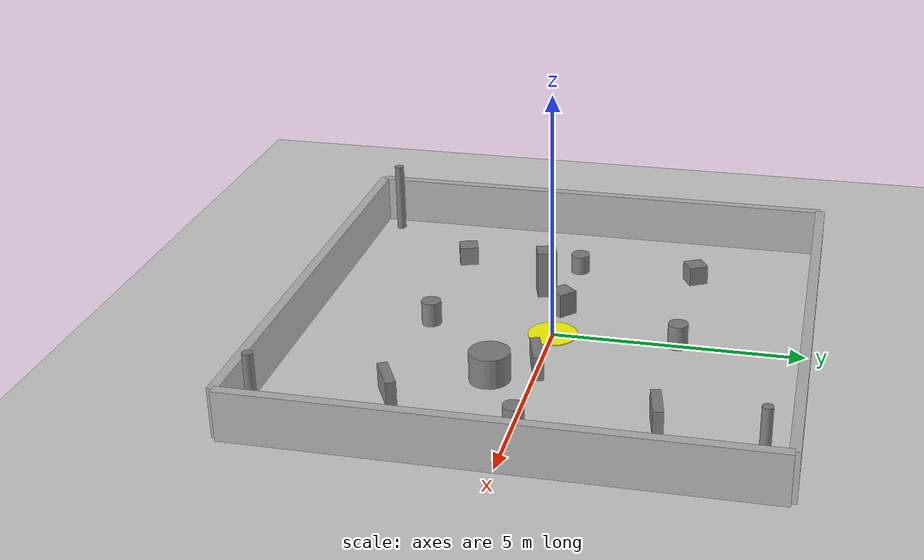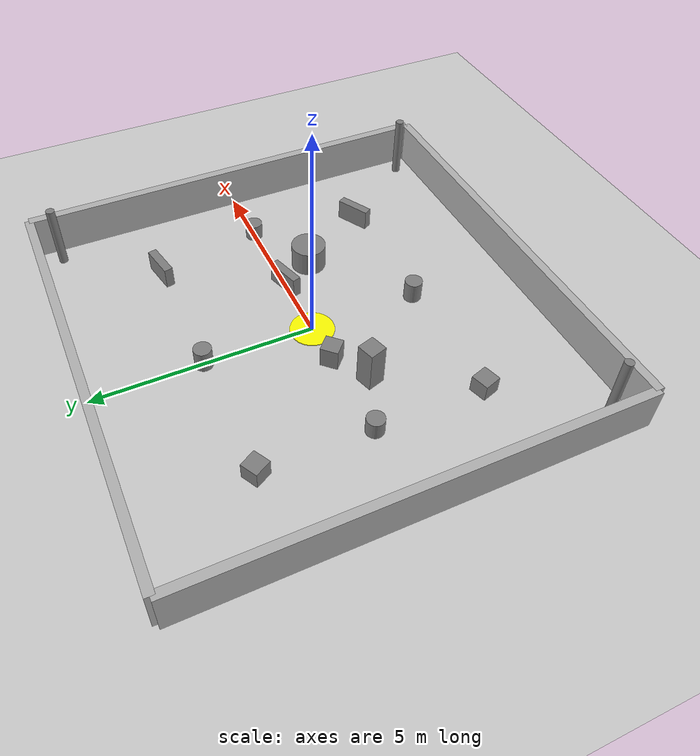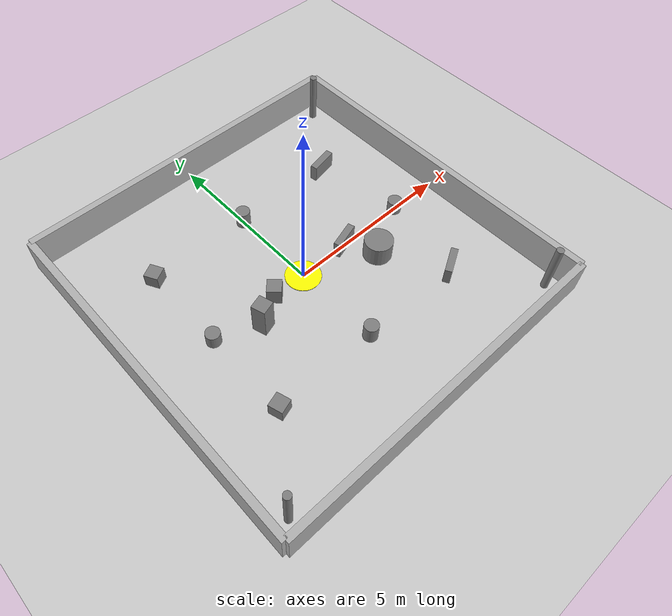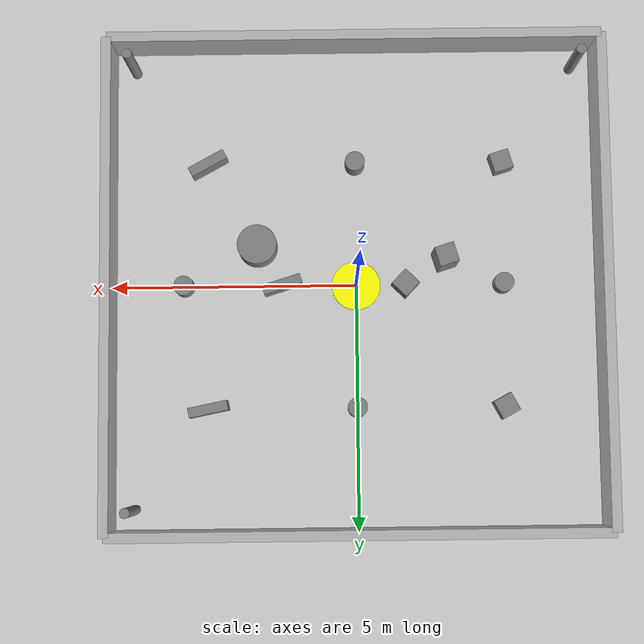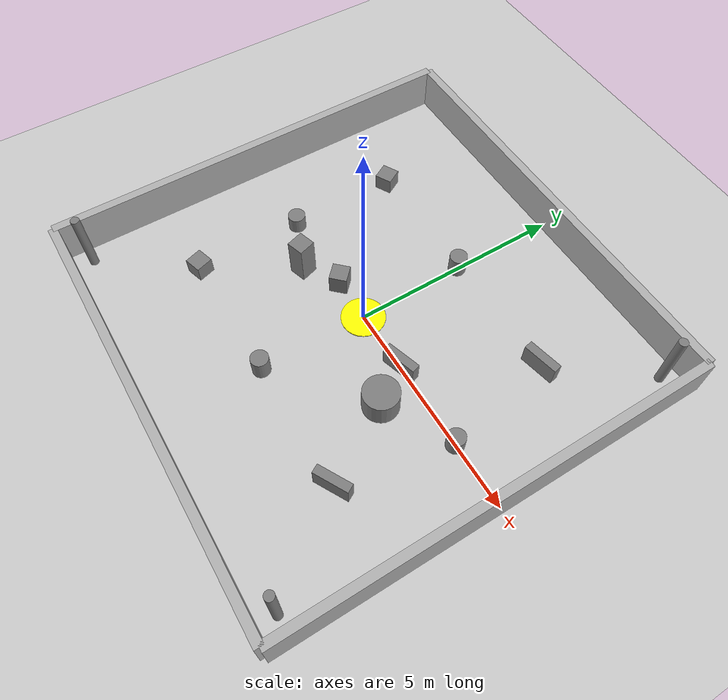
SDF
<?xml version="1.0" ?>
<sdf version="1.8">
  <world name="locobot_world">

    <physics name="1ms" type="dart">
      <max_step_size>0.001</max_step_size>
      <real_time_factor>1.0</real_time_factor>
    </physics>

    <plugin filename="gz-sim-physics-system" name="gz::sim::systems::Physics"/>
    <plugin filename="gz-sim-user-commands-system" name="gz::sim::systems::UserCommands"/>
    <plugin filename="gz-sim-scene-broadcaster-system" name="gz::sim::systems::SceneBroadcaster"/>
    <plugin filename="gz-sim-contact-system" name="gz::sim::systems::Contact"/>
    <plugin filename="gz-sim-sensors-system" name="gz::sim::systems::Sensors">
      <render_engine>ogre</render_engine>
    </plugin>

    <light name="sun" type="directional">
      <cast_shadows>true</cast_shadows>
      <pose>0 0 10 0 0 0</pose>
      <diffuse>0.8 0.8 0.8 1</diffuse>
      <specular>0.2 0.2 0.2 1</specular>
      <direction>-0.5 0.1 -0.9</direction>
    </light>

    <model name="ground_plane">
      <static>true</static>
      <link name="link">
        <collision name="collision">
          <geometry><plane><normal>0 0 1</normal><size>20 20</size></plane></geometry>
        </collision>
        <visual name="visual">
          <geometry><plane><normal>0 0 1</normal><size>20 20</size></plane></geometry>
          <material><ambient>0.8 0.8 0.8 1</ambient><diffuse>0.8 0.8 0.8 1</diffuse></material>
        </visual>
      </link>
    </model>

    <model name="wall_north">
      <static>true</static>
      <pose>0 5 0.5 0 0 0</pose>
      <link name="link">
        <collision name="collision"><geometry><box><size>10 0.2 1</size></box></geometry></collision>
        <visual name="visual">
          <geometry><box><size>10 0.2 1</size></box></geometry>
          <material><ambient>0.7 0.7 0.7 1</ambient><diffuse>0.7 0.7 0.7 1</diffuse></material>
        </visual>
      </link>
    </model>

    <model name="wall_south">
      <static>true</static>
      <pose>0 -5 0.5 0 0 0</pose>
      <link name="link">
        <collision name="collision"><geometry><box><size>10 0.2 1</size></box></geometry></collision>
        <visual name="visual">
          <geometry><box><size>10 0.2 1</size></box></geometry>
          <material><ambient>0.7 0.7 0.7 1</ambient><diffuse>0.7 0.7 0.7 1</diffuse></material>
        </visual>
      </link>
    </model>

    <model name="wall_east">
      <static>true</static>
      <pose>5 0 0.5 0 0 0</pose>
      <link name="link">
        <collision name="collision"><geometry><box><size>0.2 10 1</size></box></geometry></collision>
        <visual name="visual">
          <geometry><box><size>0.2 10 1</size></box></geometry>
          <material><ambient>0.7 0.7 0.7 1</ambient><diffuse>0.7 0.7 0.7 1</diffuse></material>
        </visual>
      </link>
    </model>

    <model name="wall_west">
      <static>true</static>
      <pose>-5 0 0.5 0 0 0</pose>
      <link name="link">
        <collision name="collision"><geometry><box><size>0.2 10 1</size></box></geometry></collision>
        <visual name="visual">
          <geometry><box><size>0.2 10 1</size></box></geometry>
          <material><ambient>0.7 0.7 0.7 1</ambient><diffuse>0.7 0.7 0.7 1</diffuse></material>
        </visual>
      </link>
    </model>

    <model name="beacon_ne">
      <static>true</static>
      <pose>4.5 4.5 0.75 0 0 0</pose>
      <link name="link">
        <collision name="collision"><geometry><cylinder><radius>0.1</radius><length>1.5</length></cylinder></geometry></collision>
        <visual name="visual">
          <geometry><cylinder><radius>0.1</radius><length>1.5</length></cylinder></geometry>
          <material><ambient>0.5 0.5 0.5 1</ambient><diffuse>0.5 0.5 0.5 1</diffuse></material>
        </visual>
      </link>
    </model>

    <model name="beacon_se">
      <static>true</static>
      <pose>4.5 -4.5 0.75 0 0 0</pose>
      <link name="link">
        <collision name="collision"><geometry><cylinder><radius>0.1</radius><length>1.5</length></cylinder></geometry></collision>
        <visual name="visual">
          <geometry><cylinder><radius>0.1</radius><length>1.5</length></cylinder></geometry>
          <material><ambient>0.5 0.5 0.5 1</ambient><diffuse>0.5 0.5 0.5 1</diffuse></material>
        </visual>
      </link>
    </model>

    <model name="beacon_sw">
      <static>true</static>
      <pose>-4.5 -4.5 0.75 0 0 0</pose>
      <link name="link">
        <collision name="collision"><geometry><cylinder><radius>0.1</radius><length>1.5</length></cylinder></geometry></collision>
        <visual name="visual">
          <geometry><cylinder><radius>0.1</radius><length>1.5</length></cylinder></geometry>
          <material><ambient>0.5 0.5 0.5 1</ambient><diffuse>0.5 0.5 0.5 1</diffuse></material>
        </visual>
      </link>
    </model>

    <model name="throw_target">
      <static>true</static>
      <pose>0 0 0.01 0 0 0</pose>
      <link name="link">
        <visual name="visual">
          <geometry><cylinder><radius>0.5</radius><length>0.02</length></cylinder></geometry>
          <material><ambient>1 1 0 1</ambient><diffuse>1 1 0 1</diffuse></material>
        </visual>
      </link>
    </model>

    <!-- Row 1 obstacles (y ~ -2.5) -->
    <model name="obs_1">
      <static>true</static>
      <pose>-3.0 -2.5 0.2 0 0 0.3</pose>
      <link name="link">
        <collision name="collision"><geometry><box><size>0.4 0.4 0.4</size></box></geometry></collision>
        <visual name="visual">
          <geometry><box><size>0.4 0.4 0.4</size></box></geometry>
          <material><ambient>0.5 0.5 0.5 1</ambient><diffuse>0.5 0.5 0.5 1</diffuse></material>
        </visual>
      </link>
    </model>

    <model name="obs_2">
      <static>true</static>
      <pose>0.0 -2.5 0.25 0 0 0</pose>
      <link name="link">
        <collision name="collision"><geometry><cylinder><radius>0.2</radius><length>0.5</length></cylinder></geometry></collision>
        <visual name="visual">
          <geometry><cylinder><radius>0.2</radius><length>0.5</length></cylinder></geometry>
          <material><ambient>0.5 0.5 0.5 1</ambient><diffuse>0.5 0.5 0.5 1</diffuse></material>
        </visual>
      </link>
    </model>

    <model name="obs_3">
      <static>true</static>
      <pose>3.0 -2.5 0.25 0 0 0.5</pose>
      <link name="link">
        <collision name="collision"><geometry><box><size>0.8 0.2 0.5</size></box></geometry></collision>
        <visual name="visual">
          <geometry><box><size>0.8 0.2 0.5</size></box></geometry>
          <material><ambient>0.5 0.5 0.5 1</ambient><diffuse>0.5 0.5 0.5 1</diffuse></material>
        </visual>
      </link>
    </model>

    <!-- Row 2 obstacles (y ~ 0.0) -->
    <model name="obs_4">
      <static>true</static>
      <pose>-3.0 0.0 0.2 0 0 0</pose>
      <link name="link">
        <collision name="collision"><geometry><cylinder><radius>0.2</radius><length>0.4</length></cylinder></geometry></collision>
        <visual name="visual">
          <geometry><cylinder><radius>0.2</radius><length>0.4</length></cylinder></geometry>
          <material><ambient>0.5 0.5 0.5 1</ambient><diffuse>0.5 0.5 0.5 1</diffuse></material>
        </visual>
      </link>
    </model>

    <model name="obs_5">
      <static>true</static>
      <pose>-1.0 0.0 0.25 0 0 0.8</pose>
      <link name="link">
        <collision name="collision"><geometry><box><size>0.4 0.4 0.5</size></box></geometry></collision>
        <visual name="visual">
          <geometry><box><size>0.4 0.4 0.5</size></box></geometry>
          <material><ambient>0.5 0.5 0.5 1</ambient><diffuse>0.5 0.5 0.5 1</diffuse></material>
        </visual>
      </link>
    </model>

    <model name="obs_6">
      <static>true</static>
      <pose>1.5 0.0 0.25 0 0 0.3</pose>
      <link name="link">
        <collision name="collision"><geometry><box><size>0.8 0.2 0.5</size></box></geometry></collision>
        <visual name="visual">
          <geometry><box><size>0.8 0.2 0.5</size></box></geometry>
          <material><ambient>0.5 0.5 0.5 1</ambient><diffuse>0.5 0.5 0.5 1</diffuse></material>
        </visual>
      </link>
    </model>

    <model name="obs_7">
      <static>true</static>
      <pose>3.5 0.0 0.2 0 0 0</pose>
      <link name="link">
        <collision name="collision"><geometry><cylinder><radius>0.2</radius><length>0.4</length></cylinder></geometry></collision>
        <visual name="visual">
          <geometry><cylinder><radius>0.2</radius><length>0.4</length></cylinder></geometry>
          <material><ambient>0.5 0.5 0.5 1</ambient><diffuse>0.5 0.5 0.5 1</diffuse></material>
        </visual>
      </link>
    </model>

    <!-- Row 3 obstacles (y ~ 2.5) -->
    <model name="obs_8">
      <static>true</static>
      <pose>-3.0 2.5 0.2 0 0 0.5</pose>
      <link name="link">
        <collision name="collision"><geometry><box><size>0.4 0.4 0.4</size></box></geometry></collision>
        <visual name="visual">
          <geometry><box><size>0.4 0.4 0.4</size></box></geometry>
          <material><ambient>0.5 0.5 0.5 1</ambient><diffuse>0.5 0.5 0.5 1</diffuse></material>
        </visual>
      </link>
    </model>

    <model name="obs_9">
      <static>true</static>
      <pose>0.0 2.5 0.25 0 0 0</pose>
      <link name="link">
        <collision name="collision"><geometry><cylinder><radius>0.2</radius><length>0.5</length></cylinder></geometry></collision>
        <visual name="visual">
          <geometry><cylinder><radius>0.2</radius><length>0.5</length></cylinder></geometry>
          <material><ambient>0.5 0.5 0.5 1</ambient><diffuse>0.5 0.5 0.5 1</diffuse></material>
        </visual>
      </link>
    </model>

    <model name="obs_10">
      <static>true</static>
      <pose>3.0 2.5 0.25 0 0 0.2</pose>
      <link name="link">
        <collision name="collision"><geometry><box><size>0.8 0.2 0.5</size></box></geometry></collision>
        <visual name="visual">
          <geometry><box><size>0.8 0.2 0.5</size></box></geometry>
          <material><ambient>0.5 0.5 0.5 1</ambient><diffuse>0.5 0.5 0.5 1</diffuse></material>
        </visual>
      </link>
    </model>

    <model name="obstacle_tall_cuboid">
      <static>true</static>
      <pose>-1.8 -0.5 0.5 0 0 0.3</pose>
      <link name="link">
        <collision name="collision"><geometry><box><size>0.4 0.4 1.0</size></box></geometry></collision>
        <visual name="visual">
          <geometry><box><size>0.4 0.4 1.0</size></box></geometry>
          <material><ambient>0.5 0.5 0.5 1</ambient><diffuse>0.5 0.5 0.5 1</diffuse></material>
        </visual>
      </link>
    </model>

    <model name="obstacle_wide_cylinder">
      <static>true</static>
      <pose>2.0 -0.8 0.3 0 0 0</pose>
      <link name="link">
        <collision name="collision"><geometry><cylinder><radius>0.4</radius><length>0.6</length></cylinder></geometry></collision>
        <visual name="visual">
          <geometry><cylinder><radius>0.4</radius><length>0.6</length></cylinder></geometry>
          <material><ambient>0.5 0.5 0.5 1</ambient><diffuse>0.5 0.5 0.5 1</diffuse></material>
        </visual>
      </link>
    </model>

  </world>
</sdf>
